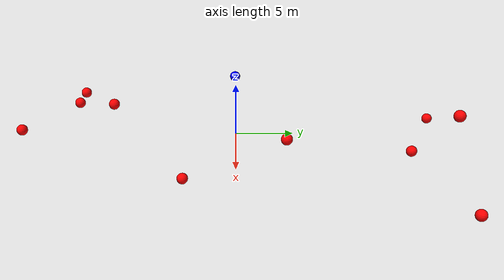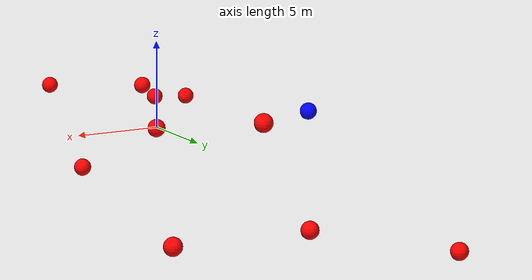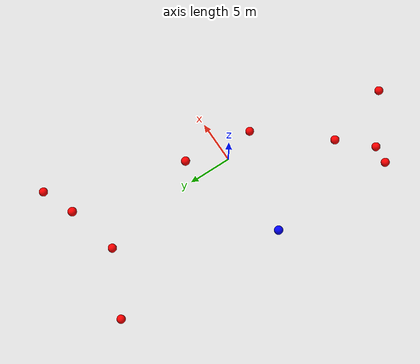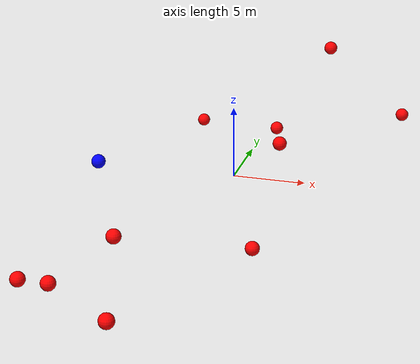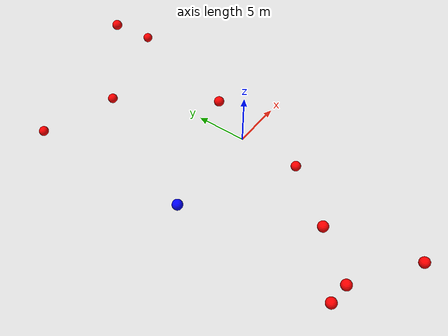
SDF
<?xml version="1.0" ?>
<sdf version="1.8">
    <world name="3d_world">
        <physics name="1ms" type="ode">
            <max_step_size>0.001</max_step_size>
            <real_time_factor>1.0</real_time_factor>
            <real_time_update_rate>1000.0</real_time_update_rate>
        </physics>
        <gravity>0 0 0</gravity>

        <plugin
            filename="gz-sim-physics-system"
            name="gz::sim::v8::systems::Physics">
        </plugin>
        <plugin
            filename="libignition-gazebo-user-commands-system.so"
            name="ignition::gazebo::systems::UserCommands">
        </plugin>
        <plugin
            filename="gz-sim-scene-broadcaster-system"
            name="gz::sim::systems::SceneBroadcaster">
        </plugin>
        <plugin
            filename="gz-sim-sensors-system"
            name="gz::sim::systems::Sensors">
            <render_engine>ogre2</render_engine>
        </plugin>

        <light type="directional" name="sun">
            <cast_shadows>true</cast_shadows>
            <pose>0 0 10 0 0 0</pose>
            <diffuse>0.8 0.8 0.8 1</diffuse>
            <specular>0.2 0.2 0.2 1</specular>
            <attenuation>
                <range>1000</range>
                <constant>0.9</constant>
                <linear>0.01</linear>
                <quadratic>0.001</quadratic>
            </attenuation>
            <direction>-0.5 0.1 -0.9</direction>
        </light>

        <!-- AGENTE -->
        <model name='agente' canonical_link='chassis'>
            <pose relative_to='world'>-10.0 0 0.0 0 0 0</pose>
            <link name='chassis'>
                <pose relative_to='__model__'>0.0 0 0.0 0 0 0</pose>
                <inertial>
                    <mass>1.14395</mass>
                    <inertia>
                        <ixx>0.095329</ixx>
                        <ixy>0</ixy>
                        <ixz>0</ixz>
                        <iyy>0.381317</iyy>
                        <iyz>0</iyz>
                        <izz>0.476646</izz>
                    </inertia>
                </inertial>
                <visual name='visual'>
                    <geometry>
                        <sphere>
                            <radius>0.5</radius>
                        </sphere>
                    </geometry>
                    <material>
                        <ambient>0.0 0.0 1.0 1</ambient>
                        <diffuse>0.0 0.0 1.0 1</diffuse>
                        <specular>0.0 0.0 1.0 1</specular>
                    </material>
                </visual>
                <collision name='collision'>
                    <geometry>
                        <sphere>
                            <radius>0.5</radius>
                        </sphere>
                    </geometry>
                </collision>
                <enable_gravity>false</enable_gravity>
            </link>

            <link name='lidar_link'>
                <pose relative_to='chassis'>0.0 0 0.1 0 0 0</pose>
                <inertial>
                    <mass>0.1</mass>
                    <inertia>
                        <ixx>0.000166667</ixx>
                        <iyy>0.000166667</iyy>
                        <izz>0.000166667</izz>
                    </inertia>
                </inertial>
                <collision name='collision'>
                    <geometry>
                        <cylinder>
                            <radius>0.05</radius>
                            <length>0.1</length>
                        </cylinder>
                    </geometry>
                </collision>
                <visual name='visual'>
                    <geometry>
                        <cylinder>
                            <radius>0.05</radius>
                            <length>0.1</length>
                        </cylinder>
                    </geometry>
                    <material>
                        <ambient>0.0 1.0 0.0 1</ambient>
                        <diffuse>0.0 1.0 0.0 1</diffuse>
                        <specular>0.0 1.0 0.0 1</specular>
                    </material>
                </visual>
                <sensor name="lidar" type="gpu_lidar">
                    <topic>scan</topic>
                    <update_rate>10</update_rate>
                    <lidar>
                        <scan>
                            <horizontal>
                                <samples>5000</samples>
                                <resolution>1</resolution>
                                <min_angle>-3.14159</min_angle>
                                <max_angle>3.14159</max_angle>
                            </horizontal>
                        </scan>
                        <range>
                            <min>0.1</min>
                            <max>10.0</max>
                            <resolution>0.01</resolution>
                        </range>
                    </lidar>
                    <visualize>true</visualize>
                    <always_on>true</always_on>
                    <update_rate>10</update_rate>
                    <pose_frame>lidar</pose_frame>
                </sensor>
                <enable_gravity>false</enable_gravity>
            </link>

            <joint name="lidar_joint" type="fixed">
                <parent>chassis</parent>
                <child>lidar_link</child>
            </joint>

            <plugin
                filename="ignition-gazebo-joint-state-publisher-system"
                name="ignition::gazebo::systems::JointStatePublisher">
            </plugin>
            <plugin
                filename="ignition-gazebo-odometry-publisher-system"
                name="ignition::gazebo::systems::OdometryPublisher">
                <dimensions>3</dimensions>
            </plugin>
            <plugin
                filename="ignition-gazebo-velocity-control-system"
                name="ignition::gazebo::systems::VelocityControl">
                <initial_linear>0.0 0 0</initial_linear>
                <initial_angular>0 0 0.0</initial_angular>
            </plugin>
            <plugin
                filename="libignition-gazebo-pose-publisher-system.so"
                name="ignition::gazebo::systems::PosePublisher">
                <topic>/agente/pose</topic>
                <frame_id>agente</frame_id>
                <update_rate>30</update_rate>
            </plugin>
        </model>

        <!-- OBSTACLE 1 -->
        <model name='obstacle_1' canonical_link='obstacle'>
            <static>false</static>
            <pose relative_to='world'>2.55 -4.72 -3.00 0 0 0</pose>
            <link name='obstacle'>
                <pose relative_to='__model__'>0.0 0 0.0 0 0 0</pose>
                <visual name='visual'>
                    <geometry>
                        <sphere>
                            <radius>0.50</radius>
                        </sphere>
                    </geometry>
                    <material>
                        <ambient>1.0 0.0 0.0 1</ambient>
                        <diffuse>1.0 0.0 0.0 1</diffuse>
                        <specular>1.0 0.0 0.0 1</specular>
                    </material>
                </visual>
                <collision name='collision'>
                    <geometry>
                        <sphere>
                            <radius>0.50</radius>
                        </sphere>
                    </geometry>
                </collision>
                <enable_gravity>false</enable_gravity>
            </link>

            <plugin
                filename="ignition-gazebo-velocity-control-system"
                name="ignition::gazebo::systems::VelocityControl">
                <initial_linear>-1.51 1.10 0.70</initial_linear>
                <initial_angular>0 0 0</initial_angular>
            </plugin>

            <plugin
                filename="ignition-gazebo-odometry-publisher-system"
                name="ignition::gazebo::systems::OdometryPublisher">
                <dimensions>3</dimensions>
            </plugin>
        </model>

        <!-- OBSTACLE 2 -->
        <model name='obstacle_2' canonical_link='obstacle'>
            <static>false</static>
            <pose relative_to='world'>-7.53 -15.39 -1.54 0 0 0</pose>
            <link name='obstacle'>
                <pose relative_to='__model__'>0.0 0 0.0 0 0 0</pose>
                <visual name='visual'>
                    <geometry>
                        <sphere>
                            <radius>0.50</radius>
                        </sphere>
                    </geometry>
                    <material>
                        <ambient>1.0 0.0 0.0 1</ambient>
                        <diffuse>1.0 0.0 0.0 1</diffuse>
                        <specular>1.0 0.0 0.0 1</specular>
                    </material>
                </visual>
                <collision name='collision'>
                    <geometry>
                        <sphere>
                            <radius>0.50</radius>
                        </sphere>
                    </geometry>
                </collision>
                <enable_gravity>false</enable_gravity>
            </link>

            <plugin
                filename="ignition-gazebo-velocity-control-system"
                name="ignition::gazebo::systems::VelocityControl">
                <initial_linear>0.98 1.74 0.17</initial_linear>
                <initial_angular>0 0 0</initial_angular>
            </plugin>

            <plugin
                filename="ignition-gazebo-odometry-publisher-system"
                name="ignition::gazebo::systems::OdometryPublisher">
                <dimensions>3</dimensions>
            </plugin>
        </model>

        <!-- OBSTACLE 3 -->
        <model name='obstacle_3' canonical_link='obstacle'>
            <static>false</static>
            <pose relative_to='world'>-0.85 16.22 -2.64 0 0 0</pose>
            <link name='obstacle'>
                <pose relative_to='__model__'>0.0 0 0.0 0 0 0</pose>
                <visual name='visual'>
                    <geometry>
                        <sphere>
                            <radius>0.50</radius>
                        </sphere>
                    </geometry>
                    <material>
                        <ambient>1.0 0.0 0.0 1</ambient>
                        <diffuse>1.0 0.0 0.0 1</diffuse>
                        <specular>1.0 0.0 0.0 1</specular>
                    </material>
                </visual>
                <collision name='collision'>
                    <geometry>
                        <sphere>
                            <radius>0.50</radius>
                        </sphere>
                    </geometry>
                </collision>
                <enable_gravity>false</enable_gravity>
            </link>

            <plugin
                filename="ignition-gazebo-velocity-control-system"
                name="ignition::gazebo::systems::VelocityControl">
                <initial_linear>-0.39 -1.94 0.32</initial_linear>
                <initial_angular>0 0 0</initial_angular>
            </plugin>

            <plugin
                filename="ignition-gazebo-odometry-publisher-system"
                name="ignition::gazebo::systems::OdometryPublisher">
                <dimensions>3</dimensions>
            </plugin>
        </model>

        <!-- OBSTACLE 4 -->
        <model name='obstacle_4' canonical_link='obstacle'>
            <static>false</static>
            <pose relative_to='world'>2.20 4.33 0.97 0 0 0</pose>
            <link name='obstacle'>
                <pose relative_to='__model__'>0.0 0 0.0 0 0 0</pose>
                <visual name='visual'>
                    <geometry>
                        <sphere>
                            <radius>0.50</radius>
                        </sphere>
                    </geometry>
                    <material>
                        <ambient>1.0 0.0 0.0 1</ambient>
                        <diffuse>1.0 0.0 0.0 1</diffuse>
                        <specular>1.0 0.0 0.0 1</specular>
                    </material>
                </visual>
                <collision name='collision'>
                    <geometry>
                        <sphere>
                            <radius>0.50</radius>
                        </sphere>
                    </geometry>
                </collision>
                <enable_gravity>false</enable_gravity>
            </link>

            <plugin
                filename="ignition-gazebo-velocity-control-system"
                name="ignition::gazebo::systems::VelocityControl">
                <initial_linear>0.41 -0.74 -0.17</initial_linear>
                <initial_angular>0 0 0</initial_angular>
            </plugin>

            <plugin
                filename="ignition-gazebo-odometry-publisher-system"
                name="ignition::gazebo::systems::OdometryPublisher">
                <dimensions>3</dimensions>
            </plugin>
        </model>

        <!-- OBSTACLE 5 -->
        <model name='obstacle_5' canonical_link='obstacle'>
            <static>false</static>
            <pose relative_to='world'>-4.69 -11.41 0.12 0 0 0</pose>
            <link name='obstacle'>
                <pose relative_to='__model__'>0.0 0 0.0 0 0 0</pose>
                <visual name='visual'>
                    <geometry>
                        <sphere>
                            <radius>0.50</radius>
                        </sphere>
                    </geometry>
                    <material>
                        <ambient>1.0 0.0 0.0 1</ambient>
                        <diffuse>1.0 0.0 0.0 1</diffuse>
                        <specular>1.0 0.0 0.0 1</specular>
                    </material>
                </visual>
                <collision name='collision'>
                    <geometry>
                        <sphere>
                            <radius>0.50</radius>
                        </sphere>
                    </geometry>
                </collision>
                <enable_gravity>false</enable_gravity>
            </link>

            <plugin
                filename="ignition-gazebo-velocity-control-system"
                name="ignition::gazebo::systems::VelocityControl">
                <initial_linear>1.37 1.46 -0.02</initial_linear>
                <initial_angular>0 0 0</initial_angular>
            </plugin>

            <plugin
                filename="ignition-gazebo-odometry-publisher-system"
                name="ignition::gazebo::systems::OdometryPublisher">
                <dimensions>3</dimensions>
            </plugin>
        </model>

        <!-- OBSTACLE 6 -->
        <model name='obstacle_6' canonical_link='obstacle'>
            <static>false</static>
            <pose relative_to='world'>-8.02 19.62 -3.89 0 0 0</pose>
            <link name='obstacle'>
                <pose relative_to='__model__'>0.0 0 0.0 0 0 0</pose>
                <visual name='visual'>
                    <geometry>
                        <sphere>
                            <radius>0.50</radius>
                        </sphere>
                    </geometry>
                    <material>
                        <ambient>1.0 0.0 0.0 1</ambient>
                        <diffuse>1.0 0.0 0.0 1</diffuse>
                        <specular>1.0 0.0 0.0 1</specular>
                    </material>
                </visual>
                <collision name='collision'>
                    <geometry>
                        <sphere>
                            <radius>0.50</radius>
                        </sphere>
                    </geometry>
                </collision>
                <enable_gravity>false</enable_gravity>
            </link>

            <plugin
                filename="ignition-gazebo-velocity-control-system"
                name="ignition::gazebo::systems::VelocityControl">
                <initial_linear>1.06 -1.66 0.33</initial_linear>
                <initial_angular>0 0 0</initial_angular>
            </plugin>

            <plugin
                filename="ignition-gazebo-odometry-publisher-system"
                name="ignition::gazebo::systems::OdometryPublisher">
                <dimensions>3</dimensions>
            </plugin>
        </model>

        <!-- OBSTACLE 7 -->
        <model name='obstacle_7' canonical_link='obstacle'>
            <static>false</static>
            <pose relative_to='world'>-2.15 -19.65 -1.03 0 0 0</pose>
            <link name='obstacle'>
                <pose relative_to='__model__'>0.0 0 0.0 0 0 0</pose>
                <visual name='visual'>
                    <geometry>
                        <sphere>
                            <radius>0.50</radius>
                        </sphere>
                    </geometry>
                    <material>
                        <ambient>1.0 0.0 0.0 1</ambient>
                        <diffuse>1.0 0.0 0.0 1</diffuse>
                        <specular>1.0 0.0 0.0 1</specular>
                    </material>
                </visual>
                <collision name='collision'>
                    <geometry>
                        <sphere>
                            <radius>0.50</radius>
                        </sphere>
                    </geometry>
                </collision>
                <enable_gravity>false</enable_gravity>
            </link>

            <plugin
                filename="ignition-gazebo-velocity-control-system"
                name="ignition::gazebo::systems::VelocityControl">
                <initial_linear>0.36 1.96 0.10</initial_linear>
                <initial_angular>0 0 0</initial_angular>
            </plugin>

            <plugin
                filename="ignition-gazebo-odometry-publisher-system"
                name="ignition::gazebo::systems::OdometryPublisher">
                <dimensions>3</dimensions>
            </plugin>
        </model>

        <!-- OBSTACLE 8 -->
        <model name='obstacle_8' canonical_link='obstacle'>
            <static>false</static>
            <pose relative_to='world'>8.82 19.34 -1.67 0 0 0</pose>
            <link name='obstacle'>
                <pose relative_to='__model__'>0.0 0 0.0 0 0 0</pose>
                <visual name='visual'>
                    <geometry>
                        <sphere>
                            <radius>0.50</radius>
                        </sphere>
                    </geometry>
                    <material>
                        <ambient>1.0 0.0 0.0 1</ambient>
                        <diffuse>1.0 0.0 0.0 1</diffuse>
                        <specular>1.0 0.0 0.0 1</specular>
                    </material>
                </visual>
                <collision name='collision'>
                    <geometry>
                        <sphere>
                            <radius>0.50</radius>
                        </sphere>
                    </geometry>
                </collision>
                <enable_gravity>false</enable_gravity>
            </link>

            <plugin
                filename="ignition-gazebo-velocity-control-system"
                name="ignition::gazebo::systems::VelocityControl">
                <initial_linear>-0.57 -1.91 0.16</initial_linear>
                <initial_angular>0 0 0</initial_angular>
            </plugin>

            <plugin
                filename="ignition-gazebo-odometry-publisher-system"
                name="ignition::gazebo::systems::OdometryPublisher">
                <dimensions>3</dimensions>
            </plugin>
        </model>

        <!-- OBSTACLE 9 -->
        <model name='obstacle_9' canonical_link='obstacle'>
            <static>false</static>
            <pose relative_to='world'>-9.64 -15.18 -1.66 0 0 0</pose>
            <link name='obstacle'>
                <pose relative_to='__model__'>0.0 0 0.0 0 0 0</pose>
                <visual name='visual'>
                    <geometry>
                        <sphere>
                            <radius>0.50</radius>
                        </sphere>
                    </geometry>
                    <material>
                        <ambient>1.0 0.0 0.0 1</ambient>
                        <diffuse>1.0 0.0 0.0 1</diffuse>
                        <specular>1.0 0.0 0.0 1</specular>
                    </material>
                </visual>
                <collision name='collision'>
                    <geometry>
                        <sphere>
                            <radius>0.50</radius>
                        </sphere>
                    </geometry>
                </collision>
                <enable_gravity>false</enable_gravity>
            </link>

            <plugin
                filename="ignition-gazebo-velocity-control-system"
                name="ignition::gazebo::systems::VelocityControl">
                <initial_linear>1.24 1.56 0.17</initial_linear>
                <initial_angular>0 0 0</initial_angular>
            </plugin>

            <plugin
                filename="ignition-gazebo-odometry-publisher-system"
                name="ignition::gazebo::systems::OdometryPublisher">
                <dimensions>3</dimensions>
            </plugin>
        </model>

        <!-- OBSTACLE 10 -->
        <model name='obstacle_10' canonical_link='obstacle'>
            <static>false</static>
            <pose relative_to='world'>3.03 18.18 3.86 0 0 0</pose>
            <link name='obstacle'>
                <pose relative_to='__model__'>0.0 0 0.0 0 0 0</pose>
                <visual name='visual'>
                    <geometry>
                        <sphere>
                            <radius>0.50</radius>
                        </sphere>
                    </geometry>
                    <material>
                        <ambient>1.0 0.0 0.0 1</ambient>
                        <diffuse>1.0 0.0 0.0 1</diffuse>
                        <specular>1.0 0.0 0.0 1</specular>
                    </material>
                </visual>
                <collision name='collision'>
                    <geometry>
                        <sphere>
                            <radius>0.50</radius>
                        </sphere>
                    </geometry>
                </collision>
                <enable_gravity>false</enable_gravity>
            </link>

            <plugin
                filename="ignition-gazebo-velocity-control-system"
                name="ignition::gazebo::systems::VelocityControl">
                <initial_linear>0.03 -1.96 -0.42</initial_linear>
                <initial_angular>0 0 0</initial_angular>
            </plugin>

            <plugin
                filename="ignition-gazebo-odometry-publisher-system"
                name="ignition::gazebo::systems::OdometryPublisher">
                <dimensions>3</dimensions>
            </plugin>
        </model>

    </world>
</sdf>
